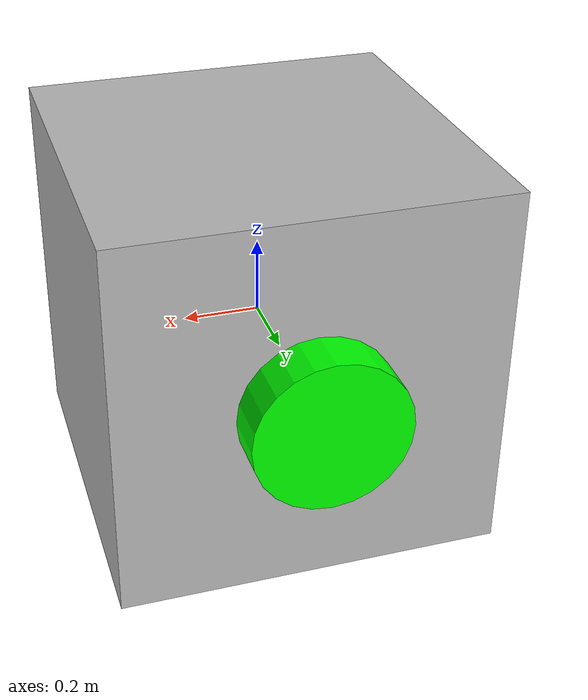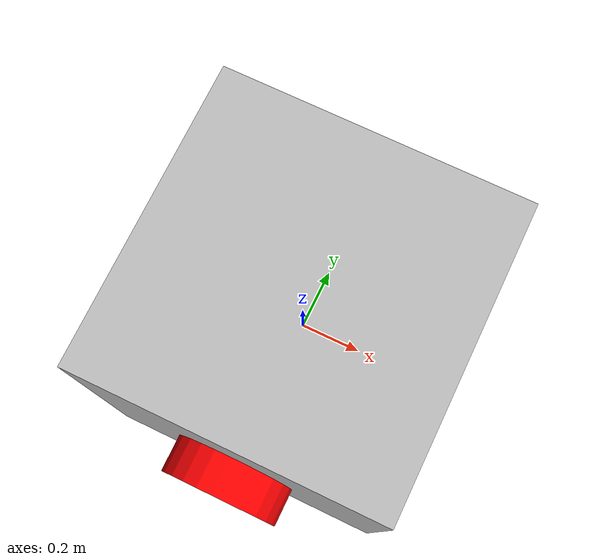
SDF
<?xml version="1.0" encoding="UTF-8"?>
<sdf version='1.9'>
  <model name='base'>
    <link name='base_link'>
      <gravity>false</gravity>
      <inertial>
        <pose>0 0 0 0 0 0</pose>
        <mass>60</mass>
        <inertia>
          <ixx>100</ixx>
          <ixy>0</ixy>
          <ixz>0</ixz>
          <iyy>100</iyy>
          <iyz>0</iyz>
          <izz>100</izz>
        </inertia>
      </inertial>
      <collision name='base_link_collision'>
        <pose>0 0 0 0 0 0</pose>
        <geometry>
          <box>
            <size>1 1 1</size>
          </box>
        </geometry>
        <surface>
          <contact>
            <ode>
              <kp>100000</kp>
              <kd>100000</kd>
            </ode>
          </contact>
          <friction>
            <ode>
              <mu>0</mu>
              <mu2>0</mu2>
              <fdir1>0 0 1</fdir1>
            </ode>
          </friction>
        </surface>
      </collision>
      <visual name='base_link_visual'>
        <pose>0 0 0 0 0 0</pose>
        <geometry>
            <box>
                <size>1 1 1</size>
            </box>
        </geometry>
    </visual>
</link>
<joint name='thruster_0_joint' type='fixed'>
      <pose relative_to='base_link'>0 -0.5 0 -1.5708 0 0</pose>
      <parent>base_link</parent>
      <child>thruster_0</child>
      <axis>
        <dynamics>
          <spring_reference>0</spring_reference>
          <spring_stiffness>0</spring_stiffness>
        </dynamics>
        <xyz>0 0 1</xyz>
        <limit>
          <lower>-1e+16</lower>
          <upper>1e+16</upper>
        </limit>
      </axis>
      <physics>
        <ode>
          <limit>
            <cfm>0</cfm>
            <erp>0.2</erp>
          </limit>
        </ode>
      </physics>
    </joint>
    <link name='thruster_0'>
      <gravity>false</gravity>
      <pose relative_to='thruster_0_joint'>0 0 0 0 -0 0</pose>
      <inertial>
        <pose>0 0 0 0 0 0</pose>
        <mass>0.001</mass>
        <inertia>
          <ixx>1e-05</ixx>
          <ixy>0</ixy>
          <ixz>0</ixz>
          <iyy>1e-05</iyy>
          <iyz>0</iyz>
          <izz>1e-05</izz>
        </inertia>
      </inertial>
      <visual name="thruster_0_visual">
        <pose> 0 0 0 0 0 0 </pose>
        <geometry>
            <cylinder>
                <length>0.25</length>
                <radius>0.2</radius>
            </cylinder>
        </geometry>
        <material>
            <ambient>0.1 0.1 0.1 1</ambient>
            <diffuse>1 0 0 1</diffuse>
            <specular>0 0 0 0</specular>
            <emissive>0 0 0 1</emissive>
        </material>
      </visual>
    </link>
    <plugin filename="gz-sim-spacecraft-thruster-model-system" name="gz::sim::systems::SpacecraftThrusterModel">
      <link_name>thruster_0</link_name>
      <actuator_number>0</actuator_number>
      <duty_cycle_frequency>10</duty_cycle_frequency>
      <max_thrust>1.4</max_thrust>
      <sub_topic>command/duty_cycle</sub_topic>
    </plugin>
    <joint name='thruster_1_joint' type='fixed'>
      <pose relative_to='base_link'>0 0.5 0 1.5708 0 0</pose>
      <parent>base_link</parent>
      <child>thruster_1</child>
      <axis>
        <dynamics>
          <spring_reference>0</spring_reference>
          <spring_stiffness>0</spring_stiffness>
        </dynamics>
        <xyz>0 0 1</xyz>
        <limit>
          <lower>-1e+16</lower>
          <upper>1e+16</upper>
        </limit>
      </axis>
      <physics>
        <ode>
          <limit>
            <cfm>0</cfm>
            <erp>0.2</erp>
          </limit>
        </ode>
      </physics>
    </joint>
    <link name='thruster_1'>
      <gravity>false</gravity>
      <pose relative_to='thruster_1_joint'>0 0 0 0 -0 0</pose>
      <inertial>
        <pose>0 0 0 0 0 0</pose>
        <mass>0.001</mass>
        <inertia>
          <ixx>1e-05</ixx>
          <ixy>0</ixy>
          <ixz>0</ixz>
          <iyy>1e-05</iyy>
          <iyz>0</iyz>
          <izz>1e-05</izz>
        </inertia>
      </inertial>
      <visual name="thruster_1_visual">
        <pose> 0 0 0 0 0 0 </pose>
        <geometry>
            <cylinder>
                <length>0.25</length>
                <radius>0.2</radius>
            </cylinder>
        </geometry>
        <material>
            <ambient>0.1 0.1 0.1 1</ambient>
            <diffuse>0 1 0 1</diffuse>
            <specular>0 0 0 0</specular>
            <emissive>0 0 0 1</emissive>
        </material>
      </visual>
    </link>
    <plugin filename="gz-sim-spacecraft-thruster-model-system" name="gz::sim::systems::SpacecraftThrusterModel">
      <link_name>thruster_1</link_name>
      <actuator_number>1</actuator_number>
      <duty_cycle_frequency>10</duty_cycle_frequency>
      <max_thrust>1.4</max_thrust>
      <sub_topic>command/duty_cycle</sub_topic>
    </plugin>
</model>
</sdf>
